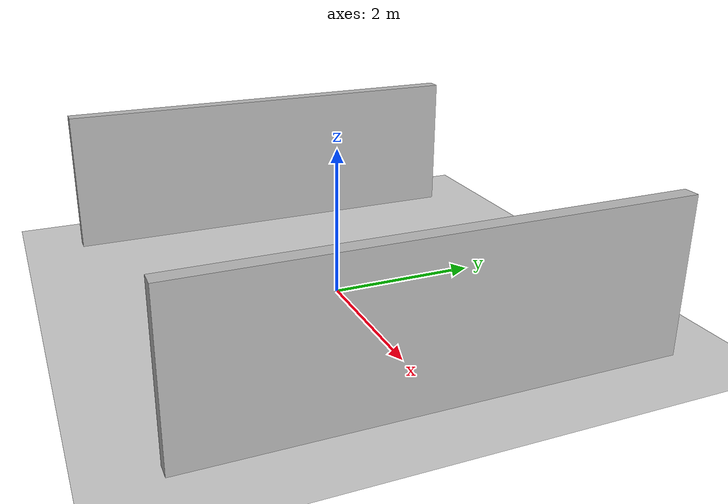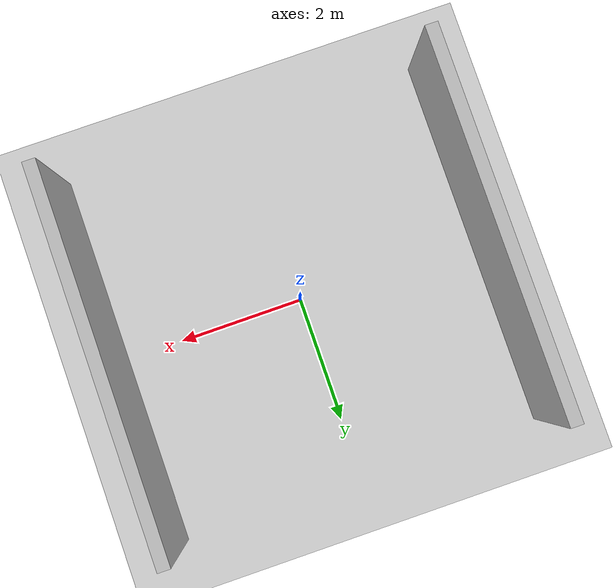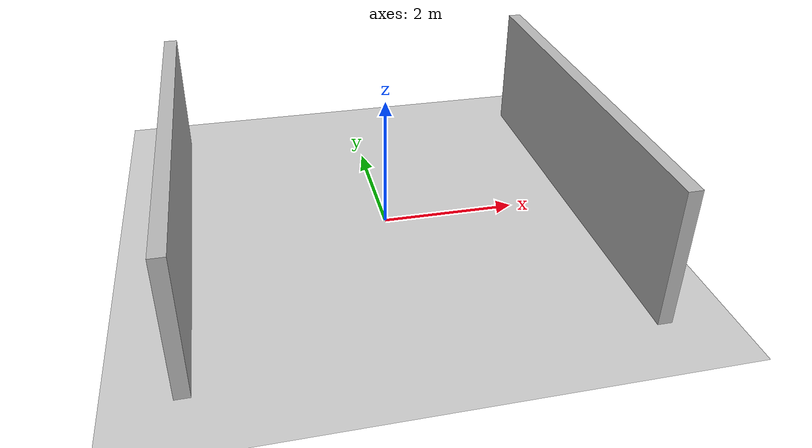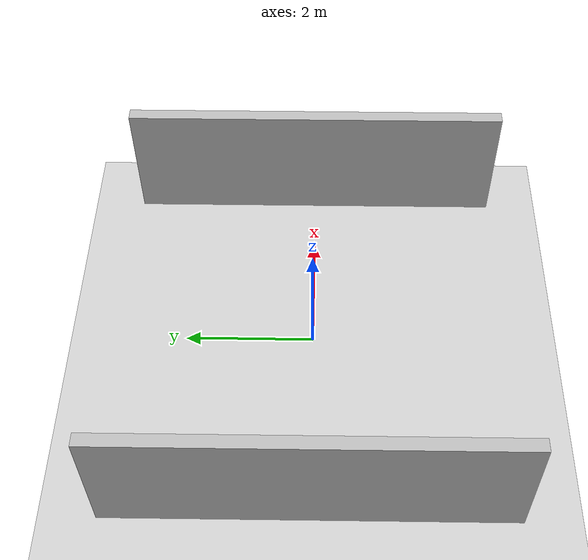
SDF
<?xml version="1.0" ?>
<sdf version="1.6">
  <world name="simple_world">

    <!-- Ground Plane -->
    <include>
      <uri>model://ground_plane</uri>
    </include>

    <!-- Sun -->
    <include>
      <uri>model://sun</uri>
    </include>

    <!-- Simple walls -->
    <model name="wall_1">
      <static>true</static>
      <pose>3 0 1 0 0 0</pose>
      <link name="link">
        <collision name="collision">
          <geometry>
            <box>
              <size>0.2 6 2</size>
            </box>
          </geometry>
        </collision>
        <visual name="visual">
          <geometry>
            <box>
              <size>0.2 6 2</size>
            </box>
          </geometry>
        </visual>
      </link>
    </model>

    <model name="wall_2">
      <static>true</static>
      <pose>-3 0 1 0 0 0</pose>
      <link name="link">
        <collision name="collision">
          <geometry>
            <box>
              <size>0.2 6 2</size>
            </box>
          </geometry>
        </collision>
        <visual name="visual">
          <geometry>
            <box>
              <size>0.2 6 2</size>
            </box>
          </geometry>
        </visual>
      </link>
    </model>

  </world>
</sdf>
